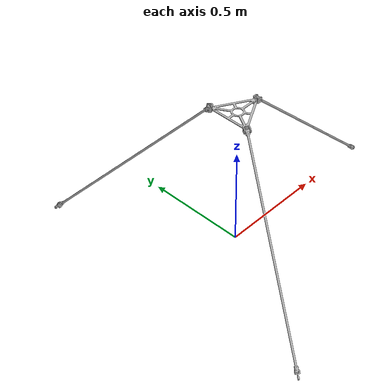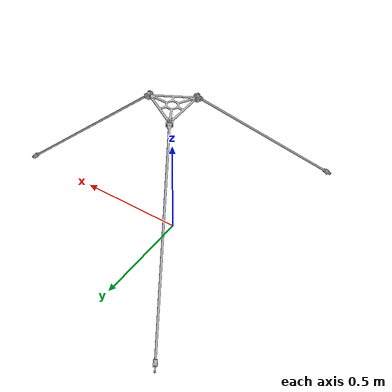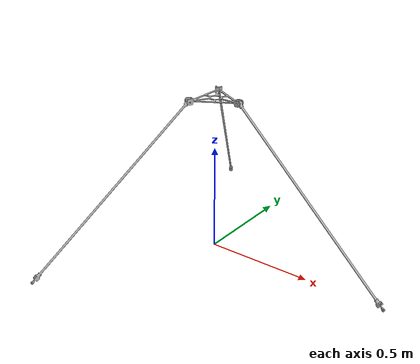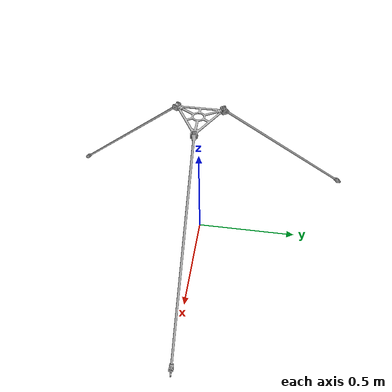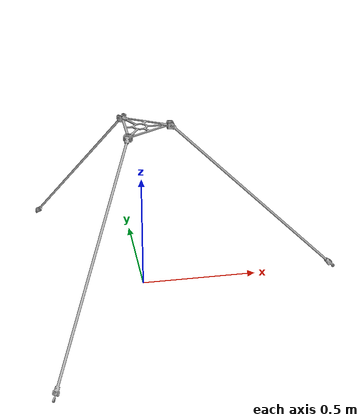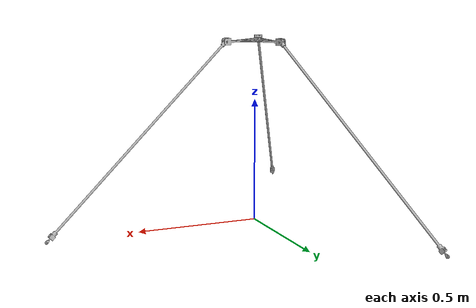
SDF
<sdf version='1.7'>
  <model name='fpr'>
    <link name="platform">
        <pose>0 0 0.7375123727775691 0 0 0</pose>
        <inertial>
        <pose>0 0 0 0 -0 0</pose>
            <mass>0.215</mass>
            <inertia>
              <ixx>5.427e-4</ixx>
              <ixy>0</ixy>
              <ixz>0</ixz>
              <iyy>5.427e-4</iyy>
              <iyz>0</iyz>
              <izz>0.001</izz>
            </inertia>
        </inertial>
        <visual name="platform_visual">
            <pose>0 0 0 0 -0 0</pose>
            <geometry>
                <mesh>
                    <scale>0.001 0.001 0.001</scale>
                    <uri>model://flying_parallel_robot/meshes/platform.stl</uri>
                </mesh>
            </geometry>
        </visual>
        <gravity>1</gravity>
    </link>
    <link name="leg1">
        <pose>0.48408892449920654 0 0.38042344827836255 0 0.7853981633974483 0</pose>
        <inertial>
            <pose>0.094 0 0 0 -0 0</pose>
            <mass>0.073</mass>
            <inertia>
              <ixx>1.5707e-6</ixx>
              <ixy>0</ixy>
              <ixz>0</ixz>
              <iyy>0.035</iyy>
              <iyz>0</iyz>
              <izz>0.035</izz>
            </inertia>
        </inertial>
        <visual name="leg1_visual">
            <pose>0 0 0 0 -0 0</pose>
            <geometry>
                <mesh>
                    <scale>0.001 0.001 0.001</scale>
                    <uri>model://flying_parallel_robot/meshes/leg.stl</uri>
                </mesh>
            </geometry>
        </visual>
        <gravity>1</gravity>
    </link>
    <link name="leg2">
        <pose>-0.24204446224960316 0.419233306307 0.38042344827836255 0 0.7853981633974483 2.0943951023931953</pose>
        <inertial>
            <pose>0.094 0 0 0 -0 0</pose>
            <mass>0.073</mass>
            <inertia>
              <ixx>1.5707e-6</ixx>
              <ixy>0</ixy>
              <ixz>0</ixz>
              <iyy>0.035</iyy>
              <iyz>0</iyz>
              <izz>0.035</izz>
            </inertia>
        </inertial>
        <visual name="leg1_visual">
            <pose>0 0 0 0 -0 0</pose>
            <geometry>
                <mesh>
                    <scale>0.001 0.001 0.001</scale>
                    <uri>model://flying_parallel_robot/meshes/leg.stl</uri>
                </mesh>
            </geometry>
        </visual>
        <gravity>1</gravity>
    </link>
    <link name="leg3">
        <pose>-0.24204446224960316 -0.419233306307 0.38042344827836255 0 0.7853981633974483 -2.0943951023931953</pose>
        <inertial>
            <pose>0.094 0 0 0 -0 0</pose>
            <mass>0.073</mass>
            <inertia>
              <ixx>1.5707e-6</ixx>
              <ixy>0</ixy>
              <ixz>0</ixz>
              <iyy>0.035</iyy>
              <iyz>0</iyz>
              <izz>0.035</izz>
            </inertia>
        </inertial>
        <visual name="leg1_visual">
            <pose>0 0 0 0 -0 0</pose>
            <geometry>
                <mesh>
                    <scale>0.001 0.001 0.001</scale>
                    <uri>model://flying_parallel_robot/meshes/leg.stl</uri>
                </mesh>
            </geometry>
        </visual>
        <gravity>1</gravity>
    </link>
    <joint name="revolute_leg_1" type="revolute">
        <child>platform</child>
        <parent>leg1</parent>
        <pose>0.127 0 0</pose>
        <axis>
            <xyz>0 1 0</xyz>
        </axis>
    </joint>
    <joint name="revolute_leg_2" type="revolute">
        <child>platform</child>
        <parent>leg2</parent>
        <pose>-0.06349999999999997 0.10998522628062372 0</pose>
        <axis>
            <xyz>0.8660254037844387 0.4999999999999998 0</xyz>
        </axis>
    </joint>
    <joint name="revolute_leg_3" type="revolute">
        <child>platform</child>
        <parent>leg3</parent>
        <pose>-0.06349999999999997 -0.10998522628062372 0</pose>
        <axis>
            <xyz>0.8660254037844387 -0.4999999999999998 0</xyz>
        </axis>
    </joint>
    <plugin name="gazebo_ros_p3d" filename="libgazebo_ros_p3d.so">
        <ros>
          <namespace>FPR/Mocap</namespace>
        </ros>
        <body_name>platform</body_name>
        <update_rate>100</update_rate>
        <frame_name>world</frame_name>
    </plugin>
    <plugin name='fpr_init' filename='libfpr_init.so'/>
  </model>
</sdf>
